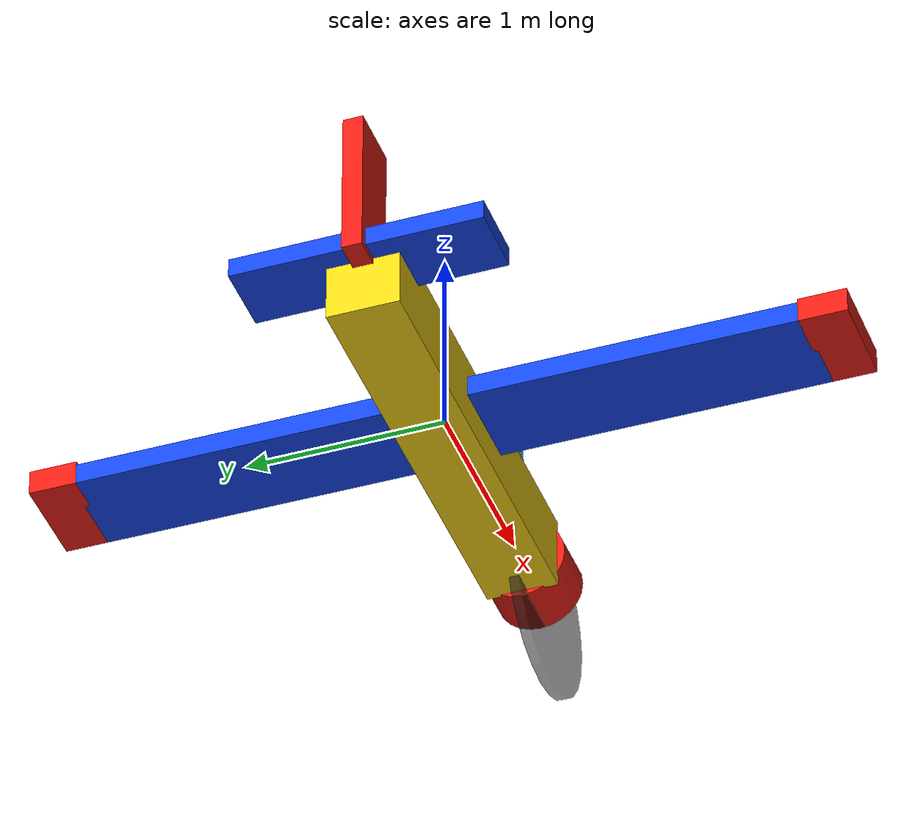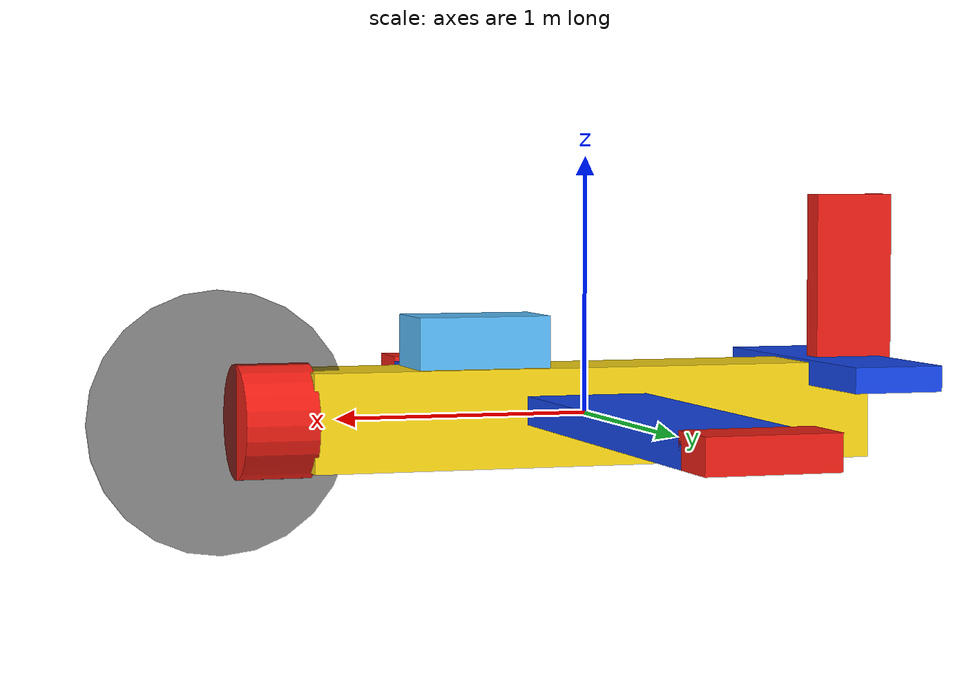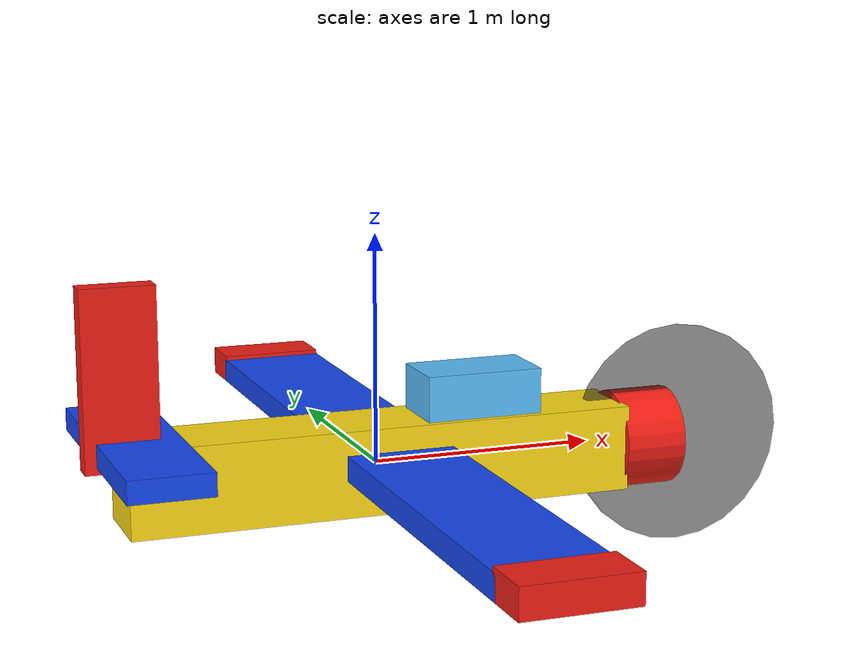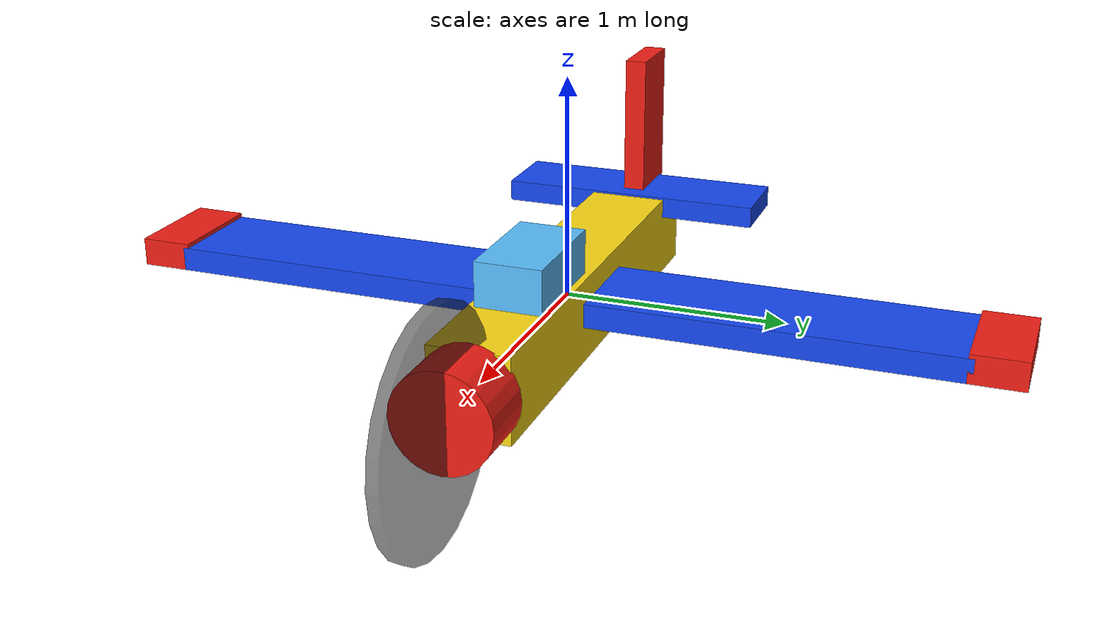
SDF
<?xml version="1.0" ?>
<sdf version="1.6">
  <model name="simple_airplane">
    <static>false</static>

    <link name="airframe">
      <gravity>false</gravity>
      <inertial>
        <mass>2.0</mass>
        <inertia>
          <ixx>0.12</ixx><ixy>0</ixy><ixz>0</ixz>
          <iyy>0.20</iyy><iyz>0</iyz><izz>0.28</izz>
        </inertia>
      </inertial>

      <collision name="body_collision">
        <geometry><box><size>2.25 0.36 0.38</size></box></geometry>
      </collision>

      <visual name="fuselage">
        <geometry><box><size>2.25 0.36 0.38</size></box></geometry>
        <material><ambient>1.0 0.86 0.08 1</ambient><diffuse>1.0 0.86 0.08 1</diffuse></material>
      </visual>
      <visual name="nose">
        <pose>1.25 0 0 0 1.5708 0</pose>
        <geometry><cylinder><radius>0.22</radius><length>0.28</length></cylinder></geometry>
        <material><ambient>0.95 0.12 0.08 1</ambient><diffuse>0.95 0.12 0.08 1</diffuse></material>
      </visual>
      <visual name="main_wing">
        <pose>0.05 0 0.03 0 0 0</pose>
        <geometry><box><size>0.48 3.65 0.11</size></box></geometry>
        <material><ambient>0.08 0.28 0.95 1</ambient><diffuse>0.08 0.28 0.95 1</diffuse></material>
      </visual>
      <visual name="left_wing_tip">
        <pose>0.05 1.92 0.04 0 0 0</pose>
        <geometry><box><size>0.48 0.24 0.13</size></box></geometry>
        <material><ambient>0.95 0.12 0.08 1</ambient><diffuse>0.95 0.12 0.08 1</diffuse></material>
      </visual>
      <visual name="right_wing_tip">
        <pose>0.05 -1.92 0.04 0 0 0</pose>
        <geometry><box><size>0.48 0.24 0.13</size></box></geometry>
        <material><ambient>0.95 0.12 0.08 1</ambient><diffuse>0.95 0.12 0.08 1</diffuse></material>
      </visual>
      <visual name="tail_wing">
        <pose>-1.05 0 0.15 0 0 0</pose>
        <geometry><box><size>0.36 1.25 0.10</size></box></geometry>
        <material><ambient>0.08 0.28 0.95 1</ambient><diffuse>0.08 0.28 0.95 1</diffuse></material>
      </visual>
      <visual name="vertical_tail">
        <pose>-1.12 0 0.46 0 0 0</pose>
        <geometry><box><size>0.32 0.10 0.78</size></box></geometry>
        <material><ambient>0.95 0.12 0.08 1</ambient><diffuse>0.95 0.12 0.08 1</diffuse></material>
      </visual>
      <visual name="propeller_disc">
        <pose>1.45 0 0 1.5708 0 0</pose>
        <geometry><cylinder><radius>0.50</radius><length>0.05</length></cylinder></geometry>
        <material><ambient>0.1 0.1 0.1 0.55</ambient><diffuse>0.1 0.1 0.1 0.55</diffuse></material>
      </visual>
      <visual name="cockpit">
        <pose>0.45 0 0.28 0 0 0</pose>
        <geometry><box><size>0.52 0.30 0.22</size></box></geometry>
        <material><ambient>0.35 0.75 1.0 1</ambient><diffuse>0.35 0.75 1.0 1</diffuse></material>
      </visual>
    </link>
  </model>
</sdf>
